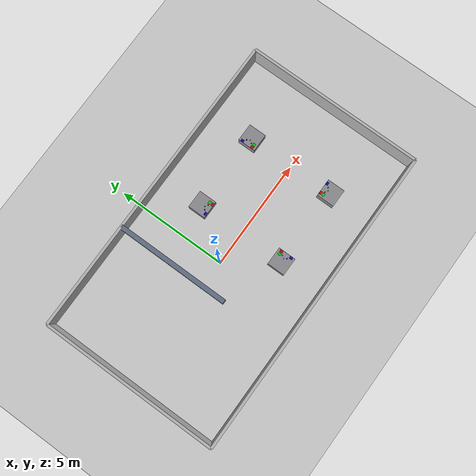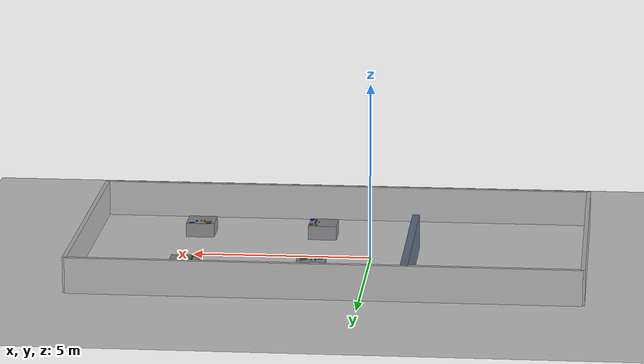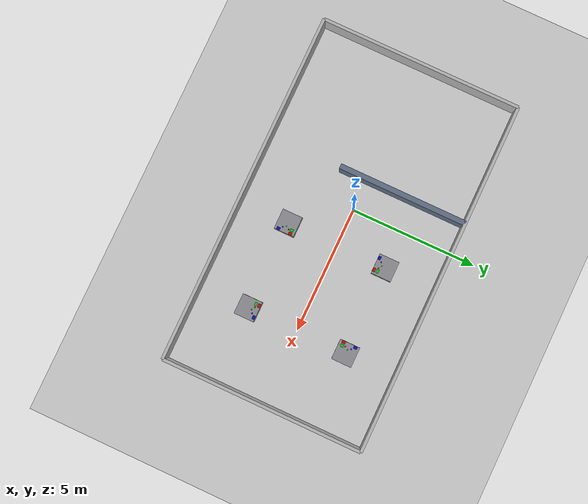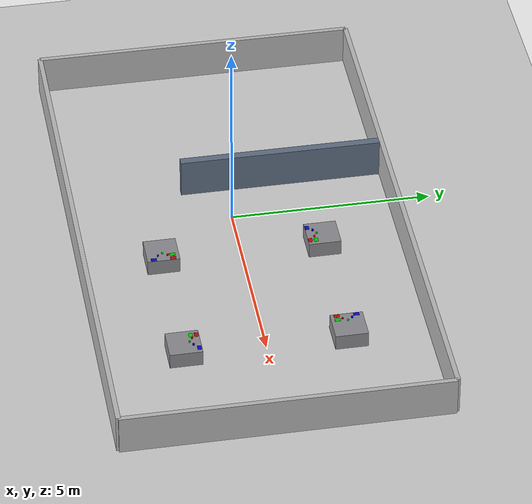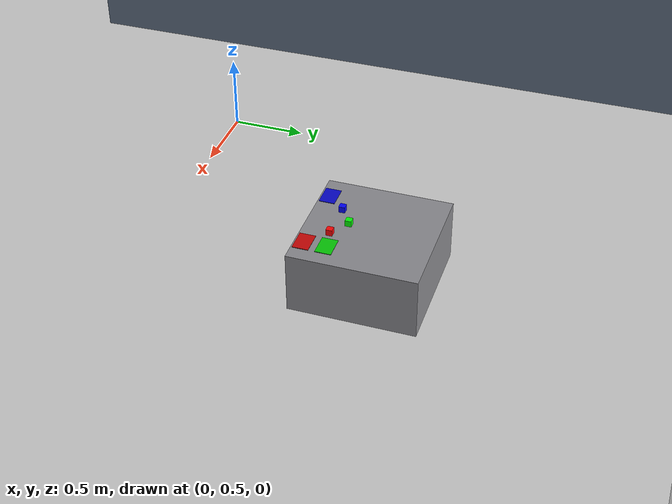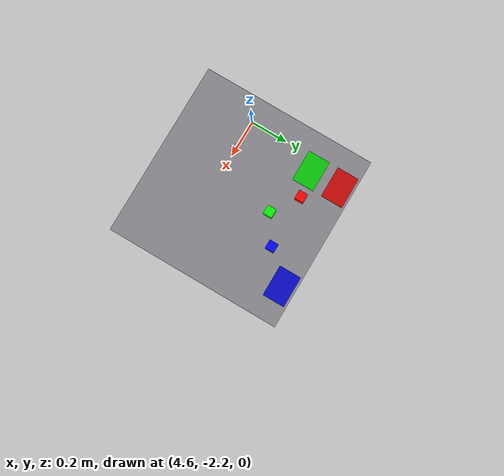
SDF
<?xml version="1.0"?>
<sdf version="1.6">
  <world name="aubo_four_table_sorting">
    <plugin name="aubo_mobile_sorting_grasp" filename="libaubo_grasp_attach_plugin.so">
      <robot_model>aubo_mobile_robot</robot_model>
      <palm_link>wrist3_Link</palm_link>
      <finger_link_1>Link1</finger_link_1>
      <finger_link_2>Link2</finger_link_2>
      <object_link>block_link</object_link>
      <!-- Finger-origin midpoint is about 4 cm above a correctly grasped cube centre. -->
      <max_attach_distance>0.06</max_attach_distance>
      <!-- Reject gross misalignment; this is not a contact/grip-force test. -->
      <max_lateral_offset>0.008</max_lateral_offset>
      <attach_topic>/sorting/grasp/attach</attach_topic>
      <detach_topic>/sorting/grasp/detach</detach_topic>
      <status_topic>/sorting/grasp/status</status_topic>
      <base_lock_topic>/sorting/base_locked</base_lock_topic>
      <base_link>base_footprint</base_link>
    </plugin>

    <include><uri>model://ground_plane</uri></include>
    <include><uri>model://sun</uri></include>

    <model name="boundary_walls">
      <static>true</static>
      <link name="walls_link">
        <collision name="north"><pose>1 4 0.5 0 0 0</pose><geometry><box><size>14 0.12 1</size></box></geometry></collision>
        <visual name="north_visual"><pose>1 4 0.5 0 0 0</pose><geometry><box><size>14 0.12 1</size></box></geometry></visual>
        <collision name="south"><pose>1 -4 0.5 0 0 0</pose><geometry><box><size>14 0.12 1</size></box></geometry></collision>
        <visual name="south_visual"><pose>1 -4 0.5 0 0 0</pose><geometry><box><size>14 0.12 1</size></box></geometry></visual>
        <collision name="east"><pose>8 0 0.5 0 0 0</pose><geometry><box><size>0.12 8 1</size></box></geometry></collision>
        <visual name="east_visual"><pose>8 0 0.5 0 0 0</pose><geometry><box><size>0.12 8 1</size></box></geometry></visual>
        <collision name="west"><pose>-6 0 0.5 0 0 0</pose><geometry><box><size>0.12 8 1</size></box></geometry></collision>
        <visual name="west_visual"><pose>-6 0 0.5 0 0 0</pose><geometry><box><size>0.12 8 1</size></box></geometry></visual>
      </link>
    </model>

    <!-- This wall joins the north boundary. The robot starts to its left and
         must use the wide southern opening to reach the sorting area. -->
    <model name="navigation_detour_wall">
      <static>true</static><pose>-1.20 1.45 0.50 0 0 0</pose>
      <link name="wall_link">
        <collision name="collision"><geometry><box><size>0.20 5.10 1.00</size></box></geometry></collision>
        <visual name="visual"><geometry><box><size>0.20 5.10 1.00</size></box></geometry><material><ambient>0.28 0.32 0.38 1</ambient><diffuse>0.38 0.44 0.52 1</diffuse></material></visual>
      </link>
    </model>

    <!-- The colored 14 cm squares are placement targets. -->
    <model name="table_1"><static>true</static><pose>1.5 2 0.25 0 0 0</pose><link name="table_link">
      <collision name="collision"><geometry><box><size>0.8 0.8 0.4</size></box></geometry></collision>
      <visual name="top"><geometry><box><size>0.8 0.8 0.4</size></box></geometry><material><ambient>0.45 0.45 0.47 1</ambient><diffuse>0.55 0.55 0.57 1</diffuse></material></visual>
      <visual name="red_pad"><pose>0.24 -0.34 0.202 0 0 0</pose><geometry><box><size>0.14 0.10 0.004</size></box></geometry><material><ambient>0.45 0.02 0.02 1</ambient><diffuse>0.8 0.03 0.03 1</diffuse></material></visual>
      <visual name="green_pad"><pose>0.24 -0.20 0.202 0 0 0</pose><geometry><box><size>0.14 0.10 0.004</size></box></geometry><material><ambient>0.02 0.40 0.02 1</ambient><diffuse>0.03 0.8 0.03 1</diffuse></material></visual>
      <visual name="blue_pad"><pose>-0.24 -0.34 0.202 0 0 0</pose><geometry><box><size>0.14 0.10 0.004</size></box></geometry><material><ambient>0.02 0.02 0.45 1</ambient><diffuse>0.03 0.03 0.8 1</diffuse></material></visual>
    </link></model>
    <model name="table_2"><static>true</static><pose>5 2 0.25 0 0 0</pose><link name="table_link">
      <collision name="collision"><geometry><box><size>0.8 0.8 0.4</size></box></geometry></collision>
      <visual name="top"><geometry><box><size>0.8 0.8 0.4</size></box></geometry><material><ambient>0.45 0.45 0.47 1</ambient><diffuse>0.55 0.55 0.57 1</diffuse></material></visual>
      <visual name="red_pad"><pose>-0.34 -0.24 0.202 0 0 0</pose><geometry><box><size>0.10 0.14 0.004</size></box></geometry><material><ambient>0.45 0.02 0.02 1</ambient><diffuse>0.8 0.03 0.03 1</diffuse></material></visual>
      <visual name="green_pad"><pose>-0.20 -0.24 0.202 0 0 0</pose><geometry><box><size>0.10 0.14 0.004</size></box></geometry><material><ambient>0.02 0.40 0.02 1</ambient><diffuse>0.03 0.8 0.03 1</diffuse></material></visual>
      <visual name="blue_pad"><pose>-0.34 0.24 0.202 0 0 0</pose><geometry><box><size>0.10 0.14 0.004</size></box></geometry><material><ambient>0.02 0.02 0.45 1</ambient><diffuse>0.03 0.03 0.8 1</diffuse></material></visual>
    </link></model>
    <model name="table_3"><static>true</static><pose>5 -2 0.25 0 0 0</pose><link name="table_link">
      <collision name="collision"><geometry><box><size>0.8 0.8 0.4</size></box></geometry></collision>
      <visual name="top"><geometry><box><size>0.8 0.8 0.4</size></box></geometry><material><ambient>0.45 0.45 0.47 1</ambient><diffuse>0.55 0.55 0.57 1</diffuse></material></visual>
      <visual name="red_pad"><pose>-0.24 0.34 0.202 0 0 0</pose><geometry><box><size>0.14 0.10 0.004</size></box></geometry><material><ambient>0.45 0.02 0.02 1</ambient><diffuse>0.8 0.03 0.03 1</diffuse></material></visual>
      <visual name="green_pad"><pose>-0.24 0.20 0.202 0 0 0</pose><geometry><box><size>0.14 0.10 0.004</size></box></geometry><material><ambient>0.02 0.40 0.02 1</ambient><diffuse>0.03 0.8 0.03 1</diffuse></material></visual>
      <visual name="blue_pad"><pose>0.24 0.34 0.202 0 0 0</pose><geometry><box><size>0.14 0.10 0.004</size></box></geometry><material><ambient>0.02 0.02 0.45 1</ambient><diffuse>0.03 0.03 0.8 1</diffuse></material></visual>
    </link></model>
    <model name="table_4"><static>true</static><pose>1.5 -2 0.25 0 0 0</pose><link name="table_link">
      <collision name="collision"><geometry><box><size>0.8 0.8 0.4</size></box></geometry></collision>
      <visual name="top"><geometry><box><size>0.8 0.8 0.4</size></box></geometry><material><ambient>0.45 0.45 0.47 1</ambient><diffuse>0.55 0.55 0.57 1</diffuse></material></visual>
      <visual name="red_pad"><pose>0.34 0.24 0.202 0 0 0</pose><geometry><box><size>0.10 0.14 0.004</size></box></geometry><material><ambient>0.45 0.02 0.02 1</ambient><diffuse>0.8 0.03 0.03 1</diffuse></material></visual>
      <visual name="green_pad"><pose>0.20 0.24 0.202 0 0 0</pose><geometry><box><size>0.10 0.14 0.004</size></box></geometry><material><ambient>0.02 0.40 0.02 1</ambient><diffuse>0.03 0.8 0.03 1</diffuse></material></visual>
      <visual name="blue_pad"><pose>0.34 -0.24 0.202 0 0 0</pose><geometry><box><size>0.10 0.14 0.004</size></box></geometry><material><ambient>0.02 0.02 0.45 1</ambient><diffuse>0.03 0.03 0.8 1</diffuse></material></visual>
    </link></model>

    <!-- Unique names let the grasp plugin select the current table's block. -->
    <model name="table_1_red_block"><pose>1.62 1.78 0.47 0 0 0</pose><link name="block_link"><gravity>true</gravity><kinematic>false</kinematic><inertial><mass>0.04</mass><inertia><ixx>0.000011</ixx><iyy>0.000011</iyy><izz>0.000011</izz></inertia></inertial><collision name="collision"><max_contacts>20</max_contacts><geometry><box><size>0.04 0.04 0.04</size></box></geometry><surface><friction><ode><mu>20.0</mu><mu2>20.0</mu2></ode></friction><contact><ode><kp>1000000</kp><kd>100</kd><max_vel>0.01</max_vel><min_depth>0.001</min_depth></ode></contact></surface></collision><visual name="visual"><geometry><box><size>0.04 0.04 0.04</size></box></geometry><material><ambient>0.8 0.02 0.02 1</ambient><diffuse>1 0.02 0.02 1</diffuse></material></visual></link></model>
    <model name="table_1_green_block"><pose>1.50 1.86 0.47 0 0 0</pose><link name="block_link"><gravity>true</gravity><kinematic>false</kinematic><inertial><mass>0.04</mass><inertia><ixx>0.000011</ixx><iyy>0.000011</iyy><izz>0.000011</izz></inertia></inertial><collision name="collision"><max_contacts>20</max_contacts><geometry><box><size>0.04 0.04 0.04</size></box></geometry><surface><friction><ode><mu>20.0</mu><mu2>20.0</mu2></ode></friction><contact><ode><kp>1000000</kp><kd>100</kd><max_vel>0.01</max_vel><min_depth>0.001</min_depth></ode></contact></surface></collision><visual name="visual"><geometry><box><size>0.04 0.04 0.04</size></box></geometry><material><ambient>0.02 0.8 0.02 1</ambient><diffuse>0.02 1 0.02 1</diffuse></material></visual></link></model>
    <model name="table_1_blue_block"><pose>1.38 1.78 0.47 0 0 0</pose><link name="block_link"><gravity>true</gravity><kinematic>false</kinematic><inertial><mass>0.04</mass><inertia><ixx>0.000011</ixx><iyy>0.000011</iyy><izz>0.000011</izz></inertia></inertial><collision name="collision"><max_contacts>20</max_contacts><geometry><box><size>0.04 0.04 0.04</size></box></geometry><surface><friction><ode><mu>20.0</mu><mu2>20.0</mu2></ode></friction><contact><ode><kp>1000000</kp><kd>100</kd><max_vel>0.01</max_vel><min_depth>0.001</min_depth></ode></contact></surface></collision><visual name="visual"><geometry><box><size>0.04 0.04 0.04</size></box></geometry><material><ambient>0.02 0.02 0.8 1</ambient><diffuse>0.02 0.02 1 1</diffuse></material></visual></link></model>
    <model name="table_2_red_block"><pose>4.78 1.88 0.47 0 0 0</pose><link name="block_link"><gravity>true</gravity><kinematic>false</kinematic><inertial><mass>0.04</mass><inertia><ixx>0.000011</ixx><iyy>0.000011</iyy><izz>0.000011</izz></inertia></inertial><collision name="collision"><max_contacts>20</max_contacts><geometry><box><size>0.04 0.04 0.04</size></box></geometry><surface><friction><ode><mu>20.0</mu><mu2>20.0</mu2></ode></friction><contact><ode><kp>1000000</kp><kd>100</kd><max_vel>0.01</max_vel><min_depth>0.001</min_depth></ode></contact></surface></collision><visual name="visual"><geometry><box><size>0.04 0.04 0.04</size></box></geometry><material><ambient>0.8 0.02 0.02 1</ambient><diffuse>1 0.02 0.02 1</diffuse></material></visual></link></model>
    <model name="table_2_green_block"><pose>4.86 2.00 0.47 0 0 0</pose><link name="block_link"><gravity>true</gravity><kinematic>false</kinematic><inertial><mass>0.04</mass><inertia><ixx>0.000011</ixx><iyy>0.000011</iyy><izz>0.000011</izz></inertia></inertial><collision name="collision"><max_contacts>20</max_contacts><geometry><box><size>0.04 0.04 0.04</size></box></geometry><surface><friction><ode><mu>20.0</mu><mu2>20.0</mu2></ode></friction><contact><ode><kp>1000000</kp><kd>100</kd><max_vel>0.01</max_vel><min_depth>0.001</min_depth></ode></contact></surface></collision><visual name="visual"><geometry><box><size>0.04 0.04 0.04</size></box></geometry><material><ambient>0.02 0.8 0.02 1</ambient><diffuse>0.02 1 0.02 1</diffuse></material></visual></link></model>
    <model name="table_2_blue_block"><pose>4.78 2.12 0.47 0 0 0</pose><link name="block_link"><gravity>true</gravity><kinematic>false</kinematic><inertial><mass>0.04</mass><inertia><ixx>0.000011</ixx><iyy>0.000011</iyy><izz>0.000011</izz></inertia></inertial><collision name="collision"><max_contacts>20</max_contacts><geometry><box><size>0.04 0.04 0.04</size></box></geometry><surface><friction><ode><mu>20.0</mu><mu2>20.0</mu2></ode></friction><contact><ode><kp>1000000</kp><kd>100</kd><max_vel>0.01</max_vel><min_depth>0.001</min_depth></ode></contact></surface></collision><visual name="visual"><geometry><box><size>0.04 0.04 0.04</size></box></geometry><material><ambient>0.02 0.02 0.8 1</ambient><diffuse>0.02 0.02 1 1</diffuse></material></visual></link></model>
    <model name="table_3_red_block"><pose>4.88 -1.78 0.47 0 0 0</pose><link name="block_link"><gravity>true</gravity><kinematic>false</kinematic><inertial><mass>0.04</mass><inertia><ixx>0.000011</ixx><iyy>0.000011</iyy><izz>0.000011</izz></inertia></inertial><collision name="collision"><max_contacts>20</max_contacts><geometry><box><size>0.04 0.04 0.04</size></box></geometry><surface><friction><ode><mu>20.0</mu><mu2>20.0</mu2></ode></friction><contact><ode><kp>1000000</kp><kd>100</kd><max_vel>0.01</max_vel><min_depth>0.001</min_depth></ode></contact></surface></collision><visual name="visual"><geometry><box><size>0.04 0.04 0.04</size></box></geometry><material><ambient>0.8 0.02 0.02 1</ambient><diffuse>1 0.02 0.02 1</diffuse></material></visual></link></model>
    <model name="table_3_green_block"><pose>5.00 -1.86 0.47 0 0 0</pose><link name="block_link"><gravity>true</gravity><kinematic>false</kinematic><inertial><mass>0.04</mass><inertia><ixx>0.000011</ixx><iyy>0.000011</iyy><izz>0.000011</izz></inertia></inertial><collision name="collision"><max_contacts>20</max_contacts><geometry><box><size>0.04 0.04 0.04</size></box></geometry><surface><friction><ode><mu>20.0</mu><mu2>20.0</mu2></ode></friction><contact><ode><kp>1000000</kp><kd>100</kd><max_vel>0.01</max_vel><min_depth>0.001</min_depth></ode></contact></surface></collision><visual name="visual"><geometry><box><size>0.04 0.04 0.04</size></box></geometry><material><ambient>0.02 0.8 0.02 1</ambient><diffuse>0.02 1 0.02 1</diffuse></material></visual></link></model>
    <model name="table_3_blue_block"><pose>5.12 -1.78 0.47 0 0 0</pose><link name="block_link"><gravity>true</gravity><kinematic>false</kinematic><inertial><mass>0.04</mass><inertia><ixx>0.000011</ixx><iyy>0.000011</iyy><izz>0.000011</izz></inertia></inertial><collision name="collision"><max_contacts>20</max_contacts><geometry><box><size>0.04 0.04 0.04</size></box></geometry><surface><friction><ode><mu>20.0</mu><mu2>20.0</mu2></ode></friction><contact><ode><kp>1000000</kp><kd>100</kd><max_vel>0.01</max_vel><min_depth>0.001</min_depth></ode></contact></surface></collision><visual name="visual"><geometry><box><size>0.04 0.04 0.04</size></box></geometry><material><ambient>0.02 0.02 0.8 1</ambient><diffuse>0.02 0.02 1 1</diffuse></material></visual></link></model>
    <model name="table_4_red_block"><pose>1.72 -1.88 0.47 0 0 0</pose><link name="block_link"><gravity>true</gravity><kinematic>false</kinematic><inertial><mass>0.04</mass><inertia><ixx>0.000011</ixx><iyy>0.000011</iyy><izz>0.000011</izz></inertia></inertial><collision name="collision"><max_contacts>20</max_contacts><geometry><box><size>0.04 0.04 0.04</size></box></geometry><surface><friction><ode><mu>20.0</mu><mu2>20.0</mu2></ode></friction><contact><ode><kp>1000000</kp><kd>100</kd><max_vel>0.01</max_vel><min_depth>0.001</min_depth></ode></contact></surface></collision><visual name="visual"><geometry><box><size>0.04 0.04 0.04</size></box></geometry><material><ambient>0.8 0.02 0.02 1</ambient><diffuse>1 0.02 0.02 1</diffuse></material></visual></link></model>
    <model name="table_4_green_block"><pose>1.64 -2.00 0.47 0 0 0</pose><link name="block_link"><gravity>true</gravity><kinematic>false</kinematic><inertial><mass>0.04</mass><inertia><ixx>0.000011</ixx><iyy>0.000011</iyy><izz>0.000011</izz></inertia></inertial><collision name="collision"><max_contacts>20</max_contacts><geometry><box><size>0.04 0.04 0.04</size></box></geometry><surface><friction><ode><mu>20.0</mu><mu2>20.0</mu2></ode></friction><contact><ode><kp>1000000</kp><kd>100</kd><max_vel>0.01</max_vel><min_depth>0.001</min_depth></ode></contact></surface></collision><visual name="visual"><geometry><box><size>0.04 0.04 0.04</size></box></geometry><material><ambient>0.02 0.8 0.02 1</ambient><diffuse>0.02 1 0.02 1</diffuse></material></visual></link></model>
    <model name="table_4_blue_block"><pose>1.72 -2.12 0.47 0 0 0</pose><link name="block_link"><gravity>true</gravity><kinematic>false</kinematic><inertial><mass>0.04</mass><inertia><ixx>0.000011</ixx><iyy>0.000011</iyy><izz>0.000011</izz></inertia></inertial><collision name="collision"><max_contacts>20</max_contacts><geometry><box><size>0.04 0.04 0.04</size></box></geometry><surface><friction><ode><mu>20.0</mu><mu2>20.0</mu2></ode></friction><contact><ode><kp>1000000</kp><kd>100</kd><max_vel>0.01</max_vel><min_depth>0.001</min_depth></ode></contact></surface></collision><visual name="visual"><geometry><box><size>0.04 0.04 0.04</size></box></geometry><material><ambient>0.02 0.02 0.8 1</ambient><diffuse>0.02 0.02 1 1</diffuse></material></visual></link></model>

    <physics name="four_table_physics" type="ode"><max_step_size>0.001</max_step_size><real_time_update_rate>1000</real_time_update_rate><ode><solver><type>quick</type><iters>150</iters><sor>1.3</sor></solver></ode></physics>
  </world>
</sdf>
